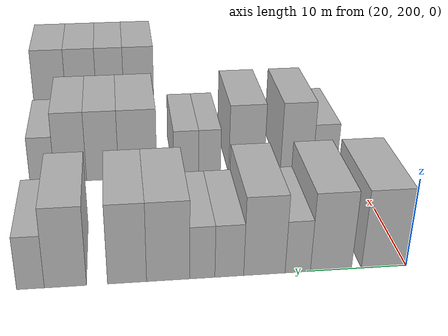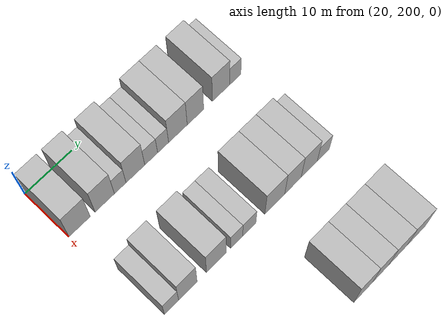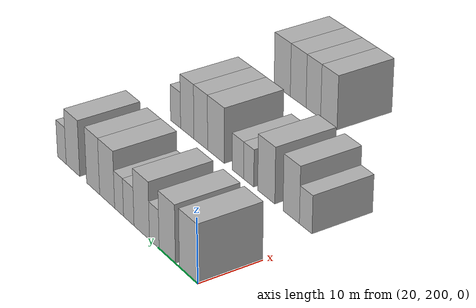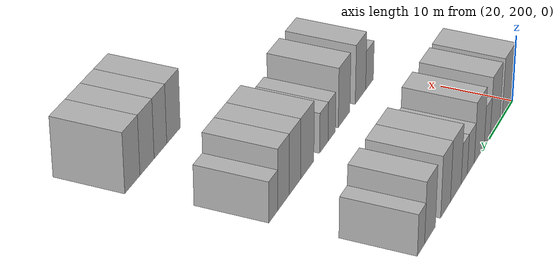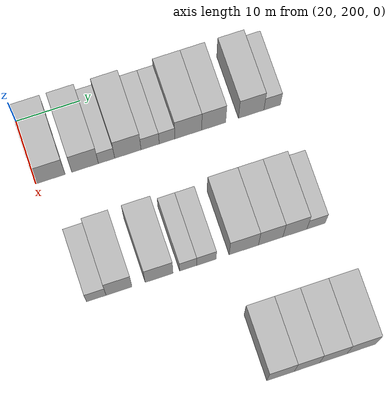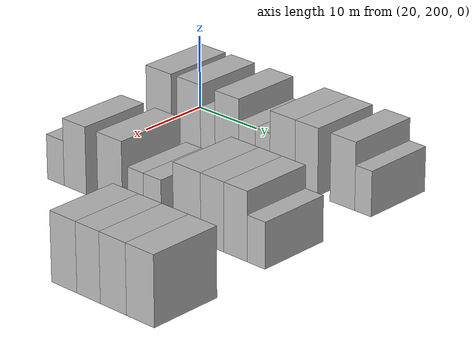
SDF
<sdf version="1.6">
 <world name="default">
  <model name="building_115">
   <static>1</static>
   <pose>25.0000 202.3037 0 0.000000 0.000000 0.000000</pose>
   <link name="link">
    <pose>0 0 4.50 0 0 0</pose>
    <collision name="collision"><geometry><box><size>10.0000 4.4665 9.0000</size></box></geometry></collision>
    <visual name="visual">
     <cast_shadows>0</cast_shadows>
     <geometry><box><size>10.0000 4.4665 9.0000</size></box></geometry>
     <material>
      <script>
       <uri>model://HANNAS_wall/materials/scripts</uri>
       <uri>model://HANNAS_wall/materials/textures</uri>
       <name>vrc/HANNAS_wall</name>
      </script>
     </material>
    </visual>
   </link>
  </model>
  <model name="building_116">
   <static>1</static>
   <pose>25.0000 207.5986 0 0.000000 0.000000 0.000000</pose>
   <link name="link">
    <pose>0 0 4.50 0 0 0</pose>
    <collision name="collision"><geometry><box><size>10.0000 4.1233 9.0000</size></box></geometry></collision>
    <visual name="visual">
     <cast_shadows>0</cast_shadows>
     <geometry><box><size>10.0000 4.1233 9.0000</size></box></geometry>
     <material>
      <script>
       <uri>model://HANNAS_wall/materials/scripts</uri>
       <uri>model://HANNAS_wall/materials/textures</uri>
       <name>vrc/HANNAS_wall</name>
      </script>
     </material>
    </visual>
   </link>
  </model>
  <model name="building_117">
   <static>1</static>
   <pose>25.0000 210.9185 0 0.000000 0.000000 0.000000</pose>
   <link name="link">
    <pose>0 0 3.00 0 0 0</pose>
    <collision name="collision"><geometry><box><size>10.0000 2.5166 6.0000</size></box></geometry></collision>
    <visual name="visual">
     <cast_shadows>0</cast_shadows>
     <geometry><box><size>10.0000 2.5166 6.0000</size></box></geometry>
     <material>
      <script>
       <uri>model://HANNAS_wall/materials/scripts</uri>
       <uri>model://HANNAS_wall/materials/textures</uri>
       <name>vrc/HANNAS_wall</name>
      </script>
     </material>
    </visual>
   </link>
  </model>
  <model name="building_118">
   <static>1</static>
   <pose>25.0000 214.2165 0 0.000000 0.000000 0.000000</pose>
   <link name="link">
    <pose>0 0 4.50 0 0 0</pose>
    <collision name="collision"><geometry><box><size>10.0000 4.0793 9.0000</size></box></geometry></collision>
    <visual name="visual">
     <cast_shadows>0</cast_shadows>
     <geometry><box><size>10.0000 4.0793 9.0000</size></box></geometry>
     <material>
      <script>
       <uri>model://HANNAS_wall/materials/scripts</uri>
       <uri>model://HANNAS_wall/materials/textures</uri>
       <name>vrc/HANNAS_wall</name>
      </script>
     </material>
    </visual>
   </link>
  </model>
  <model name="building_119">
   <static>1</static>
   <pose>25.0000 217.6667 0 0.000000 0.000000 0.000000</pose>
   <link name="link">
    <pose>0 0 3.00 0 0 0</pose>
    <collision name="collision"><geometry><box><size>10.0000 2.8213 6.0000</size></box></geometry></collision>
    <visual name="visual">
     <cast_shadows>0</cast_shadows>
     <geometry><box><size>10.0000 2.8213 6.0000</size></box></geometry>
     <material>
      <script>
       <uri>model://HANNAS_wall/materials/scripts</uri>
       <uri>model://HANNAS_wall/materials/textures</uri>
       <name>vrc/HANNAS_wall</name>
      </script>
     </material>
    </visual>
   </link>
  </model>
  <model name="building_120">
   <static>1</static>
   <pose>25.0000 220.2971 0 0.000000 0.000000 0.000000</pose>
   <link name="link">
    <pose>0 0 3.00 0 0 0</pose>
    <collision name="collision"><geometry><box><size>10.0000 2.4394 6.0000</size></box></geometry></collision>
    <visual name="visual">
     <cast_shadows>0</cast_shadows>
     <geometry><box><size>10.0000 2.4394 6.0000</size></box></geometry>
     <material>
      <script>
       <uri>model://HANNAS_wall/materials/scripts</uri>
       <uri>model://HANNAS_wall/materials/textures</uri>
       <name>vrc/HANNAS_wall</name>
      </script>
     </material>
    </visual>
   </link>
  </model>
  <model name="building_121">
   <static>1</static>
   <pose>25.0000 223.6019 0 0.000000 0.000000 0.000000</pose>
   <link name="link">
    <pose>0 0 4.50 0 0 0</pose>
    <collision name="collision"><geometry><box><size>10.0000 4.1702 9.0000</size></box></geometry></collision>
    <visual name="visual">
     <cast_shadows>0</cast_shadows>
     <geometry><box><size>10.0000 4.1702 9.0000</size></box></geometry>
     <material>
      <script>
       <uri>model://HANNAS_wall/materials/scripts</uri>
       <uri>model://HANNAS_wall/materials/textures</uri>
       <name>vrc/HANNAS_wall</name>
      </script>
     </material>
    </visual>
   </link>
  </model>
  <model name="building_122">
   <static>1</static>
   <pose>25.0000 227.5534 0 0.000000 0.000000 0.000000</pose>
   <link name="link">
    <pose>0 0 4.50 0 0 0</pose>
    <collision name="collision"><geometry><box><size>10.0000 3.7329 9.0000</size></box></geometry></collision>
    <visual name="visual">
     <cast_shadows>0</cast_shadows>
     <geometry><box><size>10.0000 3.7329 9.0000</size></box></geometry>
     <material>
      <script>
       <uri>model://HANNAS_wall/materials/scripts</uri>
       <uri>model://HANNAS_wall/materials/textures</uri>
       <name>vrc/HANNAS_wall</name>
      </script>
     </material>
    </visual>
   </link>
  </model>
  <model name="building_123">
   <static>1</static>
   <pose>25.0000 233.4091 0 0.000000 0.000000 0.000000</pose>
   <link name="link">
    <pose>0 0 4.50 0 0 0</pose>
    <collision name="collision"><geometry><box><size>10.0000 3.9787 9.0000</size></box></geometry></collision>
    <visual name="visual">
     <cast_shadows>0</cast_shadows>
     <geometry><box><size>10.0000 3.9787 9.0000</size></box></geometry>
     <material>
      <script>
       <uri>model://HANNAS_wall/materials/scripts</uri>
       <uri>model://HANNAS_wall/materials/textures</uri>
       <name>vrc/HANNAS_wall</name>
      </script>
     </material>
    </visual>
   </link>
  </model>
  <model name="building_124">
   <static>1</static>
   <pose>25.0000 236.6980 0 0.000000 0.000000 0.000000</pose>
   <link name="link">
    <pose>0 0 3.00 0 0 0</pose>
    <collision name="collision"><geometry><box><size>10.0000 2.5991 6.0000</size></box></geometry></collision>
    <visual name="visual">
     <cast_shadows>0</cast_shadows>
     <geometry><box><size>10.0000 2.5991 6.0000</size></box></geometry>
     <material>
      <script>
       <uri>model://HANNAS_wall/materials/scripts</uri>
       <uri>model://HANNAS_wall/materials/textures</uri>
       <name>vrc/HANNAS_wall</name>
      </script>
     </material>
    </visual>
   </link>
  </model>
  <model name="building_239">
   <static>1</static>
   <pose>44.0000 203.2597 0 0.000000 0.000000 0.000000</pose>
   <link name="link">
    <pose>0 0 3.00 0 0 0</pose>
    <collision name="collision"><geometry><box><size>10.0000 2.9717 6.0000</size></box></geometry></collision>
    <visual name="visual">
     <cast_shadows>0</cast_shadows>
     <geometry><box><size>10.0000 2.9717 6.0000</size></box></geometry>
     <material>
      <script>
       <uri>model://HANNAS_wall/materials/scripts</uri>
       <uri>model://HANNAS_wall/materials/textures</uri>
       <name>vrc/HANNAS_wall</name>
      </script>
     </material>
    </visual>
   </link>
  </model>
  <model name="building_240">
   <static>1</static>
   <pose>44.0000 206.7092 0 0.000000 0.000000 0.000000</pose>
   <link name="link">
    <pose>0 0 4.50 0 0 0</pose>
    <collision name="collision"><geometry><box><size>10.0000 3.9274 9.0000</size></box></geometry></collision>
    <visual name="visual">
     <cast_shadows>0</cast_shadows>
     <geometry><box><size>10.0000 3.9274 9.0000</size></box></geometry>
     <material>
      <script>
       <uri>model://HANNAS_wall/materials/scripts</uri>
       <uri>model://HANNAS_wall/materials/textures</uri>
       <name>vrc/HANNAS_wall</name>
      </script>
     </material>
    </visual>
   </link>
  </model>
  <model name="building_241">
   <static>1</static>
   <pose>44.0000 212.7973 0 0.000000 0.000000 0.000000</pose>
   <link name="link">
    <pose>0 0 4.50 0 0 0</pose>
    <collision name="collision"><geometry><box><size>10.0000 4.2486 9.0000</size></box></geometry></collision>
    <visual name="visual">
     <cast_shadows>0</cast_shadows>
     <geometry><box><size>10.0000 4.2486 9.0000</size></box></geometry>
     <material>
      <script>
       <uri>model://HANNAS_wall/materials/scripts</uri>
       <uri>model://HANNAS_wall/materials/textures</uri>
       <name>vrc/HANNAS_wall</name>
      </script>
     </material>
    </visual>
   </link>
  </model>
  <model name="building_242">
   <static>1</static>
   <pose>44.0000 217.2324 0 0.000000 0.000000 0.000000</pose>
   <link name="link">
    <pose>0 0 3.00 0 0 0</pose>
    <collision name="collision"><geometry><box><size>10.0000 2.6215 6.0000</size></box></geometry></collision>
    <visual name="visual">
     <cast_shadows>0</cast_shadows>
     <geometry><box><size>10.0000 2.6215 6.0000</size></box></geometry>
     <material>
      <script>
       <uri>model://HANNAS_wall/materials/scripts</uri>
       <uri>model://HANNAS_wall/materials/textures</uri>
       <name>vrc/HANNAS_wall</name>
      </script>
     </material>
    </visual>
   </link>
  </model>
  <model name="building_243">
   <static>1</static>
   <pose>44.0000 220.0216 0 0.000000 0.000000 0.000000</pose>
   <link name="link">
    <pose>0 0 3.00 0 0 0</pose>
    <collision name="collision"><geometry><box><size>10.0000 2.9570 6.0000</size></box></geometry></collision>
    <visual name="visual">
     <cast_shadows>0</cast_shadows>
     <geometry><box><size>10.0000 2.9570 6.0000</size></box></geometry>
     <material>
      <script>
       <uri>model://HANNAS_wall/materials/scripts</uri>
       <uri>model://HANNAS_wall/materials/textures</uri>
       <name>vrc/HANNAS_wall</name>
      </script>
     </material>
    </visual>
   </link>
  </model>
  <model name="building_244">
   <static>1</static>
   <pose>44.0000 225.7481 0 0.000000 0.000000 0.000000</pose>
   <link name="link">
    <pose>0 0 4.50 0 0 0</pose>
    <collision name="collision"><geometry><box><size>10.0000 4.4961 9.0000</size></box></geometry></collision>
    <visual name="visual">
     <cast_shadows>0</cast_shadows>
     <geometry><box><size>10.0000 4.4961 9.0000</size></box></geometry>
     <material>
      <script>
       <uri>model://HANNAS_wall/materials/scripts</uri>
       <uri>model://HANNAS_wall/materials/textures</uri>
       <name>vrc/HANNAS_wall</name>
      </script>
     </material>
    </visual>
   </link>
  </model>
  <model name="building_245">
   <static>1</static>
   <pose>44.0000 229.8719 0 0.000000 0.000000 0.000000</pose>
   <link name="link">
    <pose>0 0 4.50 0 0 0</pose>
    <collision name="collision"><geometry><box><size>10.0000 3.7514 9.0000</size></box></geometry></collision>
    <visual name="visual">
     <cast_shadows>0</cast_shadows>
     <geometry><box><size>10.0000 3.7514 9.0000</size></box></geometry>
     <material>
      <script>
       <uri>model://HANNAS_wall/materials/scripts</uri>
       <uri>model://HANNAS_wall/materials/textures</uri>
       <name>vrc/HANNAS_wall</name>
      </script>
     </material>
    </visual>
   </link>
  </model>
  <model name="building_246">
   <static>1</static>
   <pose>44.0000 233.6017 0 0.000000 0.000000 0.000000</pose>
   <link name="link">
    <pose>0 0 4.50 0 0 0</pose>
    <collision name="collision"><geometry><box><size>10.0000 3.7083 9.0000</size></box></geometry></collision>
    <visual name="visual">
     <cast_shadows>0</cast_shadows>
     <geometry><box><size>10.0000 3.7083 9.0000</size></box></geometry>
     <material>
      <script>
       <uri>model://HANNAS_wall/materials/scripts</uri>
       <uri>model://HANNAS_wall/materials/textures</uri>
       <name>vrc/HANNAS_wall</name>
      </script>
     </material>
    </visual>
   </link>
  </model>
  <model name="building_247">
   <static>1</static>
   <pose>44.0000 236.8771 0 0.000000 0.000000 0.000000</pose>
   <link name="link">
    <pose>0 0 3.00 0 0 0</pose>
    <collision name="collision"><geometry><box><size>10.0000 2.8424 6.0000</size></box></geometry></collision>
    <visual name="visual">
     <cast_shadows>0</cast_shadows>
     <geometry><box><size>10.0000 2.8424 6.0000</size></box></geometry>
     <material>
      <script>
       <uri>model://HANNAS_wall/materials/scripts</uri>
       <uri>model://HANNAS_wall/materials/textures</uri>
       <name>vrc/HANNAS_wall</name>
      </script>
     </material>
    </visual>
   </link>
  </model>
  <model name="building_359">
   <static>1</static>
   <pose>63.0000 224.8024 0 0.000000 0.000000 0.000000</pose>
   <link name="link">
    <pose>0 0 4.50 0 0 0</pose>
    <collision name="collision"><geometry><box><size>10.0000 4.1659 9.0000</size></box></geometry></collision>
    <visual name="visual">
     <cast_shadows>0</cast_shadows>
     <geometry><box><size>10.0000 4.1659 9.0000</size></box></geometry>
     <material>
      <script>
       <uri>model://HANNAS_wall/materials/scripts</uri>
       <uri>model://HANNAS_wall/materials/textures</uri>
       <name>vrc/HANNAS_wall</name>
      </script>
     </material>
    </visual>
   </link>
  </model>
  <model name="building_360">
   <static>1</static>
   <pose>63.0000 228.7784 0 0.000000 0.000000 0.000000</pose>
   <link name="link">
    <pose>0 0 4.50 0 0 0</pose>
    <collision name="collision"><geometry><box><size>10.0000 3.7860 9.0000</size></box></geometry></collision>
    <visual name="visual">
     <cast_shadows>0</cast_shadows>
     <geometry><box><size>10.0000 3.7860 9.0000</size></box></geometry>
     <material>
      <script>
       <uri>model://HANNAS_wall/materials/scripts</uri>
       <uri>model://HANNAS_wall/materials/textures</uri>
       <name>vrc/HANNAS_wall</name>
      </script>
     </material>
    </visual>
   </link>
  </model>
  <model name="building_361">
   <static>1</static>
   <pose>63.0000 232.7591 0 0.000000 0.000000 0.000000</pose>
   <link name="link">
    <pose>0 0 4.50 0 0 0</pose>
    <collision name="collision"><geometry><box><size>10.0000 4.1755 9.0000</size></box></geometry></collision>
    <visual name="visual">
     <cast_shadows>0</cast_shadows>
     <geometry><box><size>10.0000 4.1755 9.0000</size></box></geometry>
     <material>
      <script>
       <uri>model://HANNAS_wall/materials/scripts</uri>
       <uri>model://HANNAS_wall/materials/textures</uri>
       <name>vrc/HANNAS_wall</name>
      </script>
     </material>
    </visual>
   </link>
  </model>
  <model name="building_362">
   <static>1</static>
   <pose>63.0000 237.0331 0 0.000000 0.000000 0.000000</pose>
   <link name="link">
    <pose>0 0 4.50 0 0 0</pose>
    <collision name="collision"><geometry><box><size>10.0000 4.3725 9.0000</size></box></geometry></collision>
    <visual name="visual">
     <cast_shadows>0</cast_shadows>
     <geometry><box><size>10.0000 4.3725 9.0000</size></box></geometry>
     <material>
      <script>
       <uri>model://HANNAS_wall/materials/scripts</uri>
       <uri>model://HANNAS_wall/materials/textures</uri>
       <name>vrc/HANNAS_wall</name>
      </script>
     </material>
    </visual>
   </link>
  </model>
 </world>
</sdf>
